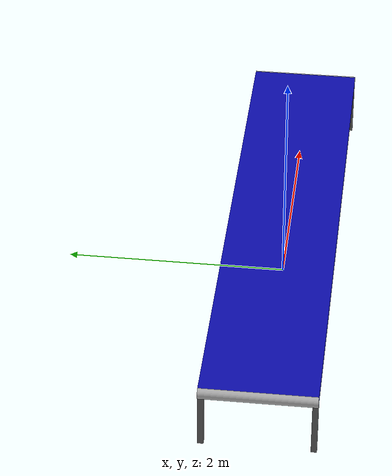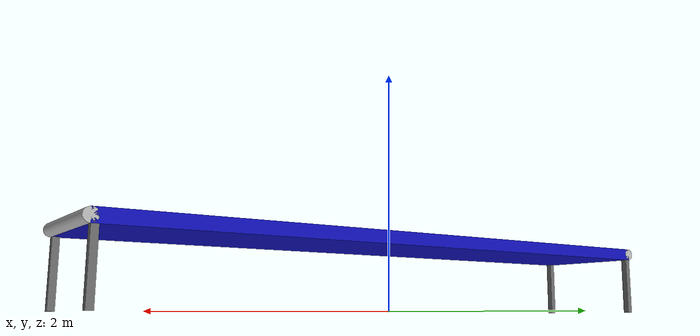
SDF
<?xml version="1.0" ?>
<?xml version="1.0" ?>
<sdf version="1.7">
  <model name="simple_conveyor">
    <static>1</static>
    <link name="base_link">
      <pose relative_to="__model__">0 0 0 0 0 0</pose>
      <inertial>
        <mass>1000.0</mass>
        <inertia>
          <ixx>84.16666666666666</ixx>
          <ixy>0</ixy>
          <ixz>0</ixz>
          <iyy>2084.1666666666665</iyy>
          <iyz>1.5e-05</iyz>
          <izz>2166.6666666666665</izz>
        </inertia>
      </inertial>
      <collision name="main_collision">
        <pose relative_to="base_link">0 0 0.55 0 0 0</pose>
        <geometry>
          <box>
            <size>5.0 1.0 0.1</size>
          </box>
        </geometry>
        <surface>
          <friction>
            <ode>
              <mu>0.7</mu>
              <mu2>150</mu2>
              <fdir1>0 1 0</fdir1>
            </ode>
          </friction>
        </surface>
      </collision>
      <visual name="main_visual">
        <pose relative_to="base_link">0 0 0.55 0 0 0</pose>
        <geometry>
          <box>
            <size>5.0 1.0 0.1</size>
          </box>
        </geometry>
        <material>
          <ambient>0.05 0.05 0.70 1</ambient>
          <diffuse>0.05 0.05 0.70 1</diffuse>
          <specular>0.8 0.8 0.8 1</specular>
        </material>
      </visual>
      <collision name="collision_1">
        <pose relative_to="base_link">2.5 0 0.55 -1.570796327 0 0</pose>
        <geometry>
          <cylinder>
            <length>1.0</length>
            <radius>0.05</radius>
          </cylinder>
        </geometry>
        <surface>
          <friction>
            <ode>
              <mu>0.7</mu>
              <mu2>150</mu2>
              <fdir1>0 1 0</fdir1>
            </ode>
          </friction>
        </surface>
      </collision>
      <visual name="visual_1">
        <pose relative_to="base_link">2.5 0 0.55 -1.570796327 0 0</pose>
        <geometry>
          <cylinder>
            <length>1.0</length>
            <radius>0.05</radius>
          </cylinder>
        </geometry>
        <material>
          <ambient>0.7 0.7 0.7 1</ambient>
          <diffuse>0.7 0.7 0.7 1</diffuse>
          <specular>1.0 1.0 1.0 1</specular>
        </material>
      </visual>
      <collision name="collision_2">
        <pose relative_to="base_link">-2.5 0 0.55 -1.570796327 0 0</pose>
        <geometry>
          <cylinder>
            <length>1.0</length>
            <radius>0.05</radius>
          </cylinder>
        </geometry>
        <surface>
          <friction>
            <ode>
              <mu>0.7</mu>
              <mu2>150</mu2>
              <fdir1>0 1 0</fdir1>
            </ode>
          </friction>
        </surface>
      </collision>
      <visual name="visual_2">
        <pose relative_to="base_link">-2.5 0 0.55 -1.570796327 0 0</pose>
        <geometry>
          <cylinder>
            <length>1.0</length>
            <radius>0.05</radius>
          </cylinder>
        </geometry>
        <material>
          <ambient>0.7 0.7 0.7 1</ambient>
          <diffuse>0.7 0.7 0.7 1</diffuse>
          <specular>1.0 1.0 1.0 1</specular>
        </material>
      </visual>
      <collision name="leg_collision_0">
        <pose relative_to="base_link">2.475 0.475 0.25 0 0 0</pose>
        <geometry>
          <box>
            <size>0.05 0.05 0.5</size>
          </box>
        </geometry>
      </collision>
      <visual name="leg_visual_0">
        <pose relative_to="base_link">2.475 0.475 0.25 0 0 0</pose>
        <geometry>
          <box>
            <size>0.05 0.05 0.5</size>
          </box>
        </geometry>
        <material>
          <ambient>0.4 0.4 0.4 1</ambient>
          <diffuse>0.4 0.4 0.4 1</diffuse>
          <specular>0.8 0.8 0.8 1</specular>
        </material>
      </visual>
      <collision name="leg_collision_1">
        <pose relative_to="base_link">2.475 -0.475 0.25 0 0 0</pose>
        <geometry>
          <box>
            <size>0.05 0.05 0.5</size>
          </box>
        </geometry>
      </collision>
      <visual name="leg_visual_1">
        <pose relative_to="base_link">2.475 -0.475 0.25 0 0 0</pose>
        <geometry>
          <box>
            <size>0.05 0.05 0.5</size>
          </box>
        </geometry>
        <material>
          <ambient>0.4 0.4 0.4 1</ambient>
          <diffuse>0.4 0.4 0.4 1</diffuse>
          <specular>0.8 0.8 0.8 1</specular>
        </material>
      </visual>
      <collision name="leg_collision_2">
        <pose relative_to="base_link">-2.475 0.475 0.25 0 0 0</pose>
        <geometry>
          <box>
            <size>0.05 0.05 0.5</size>
          </box>
        </geometry>
      </collision>
      <visual name="leg_visual_2">
        <pose relative_to="base_link">-2.475 0.475 0.25 0 0 0</pose>
        <geometry>
          <box>
            <size>0.05 0.05 0.5</size>
          </box>
        </geometry>
        <material>
          <ambient>0.4 0.4 0.4 1</ambient>
          <diffuse>0.4 0.4 0.4 1</diffuse>
          <specular>0.8 0.8 0.8 1</specular>
        </material>
      </visual>
      <collision name="leg_collision_3">
        <pose relative_to="base_link">-2.475 -0.475 0.25 0 0 0</pose>
        <geometry>
          <box>
            <size>0.05 0.05 0.5</size>
          </box>
        </geometry>
      </collision>
      <visual name="leg_visual_3">
        <pose relative_to="base_link">-2.475 -0.475 0.25 0 0 0</pose>
        <geometry>
          <box>
            <size>0.05 0.05 0.5</size>
          </box>
        </geometry>
        <material>
          <ambient>0.4 0.4 0.4 1</ambient>
          <diffuse>0.4 0.4 0.4 1</diffuse>
          <specular>0.8 0.8 0.8 1</specular>
        </material>
      </visual>
      <gravity>1</gravity>
      <kinematic>0</kinematic>
    </link>
    <plugin filename="gz-sim-track-controller-system" name="gz::sim::systems::TrackController">
      <link>base_link</link>
      <odometry_publish_frequency>1</odometry_publish_frequency>
    </plugin>
    <plugin filename="gz-sim-triggered-publisher-system" name="gz::sim::systems::TriggeredPublisher">
      <input type="gz.msgs.Int32" topic="/keyboard/keypress">
        <match field="data">87</match>
      </input>
      <output type="gz.msgs.Double" topic="/model/simple_conveyor/link/base_link/track_cmd_vel">
        data: 1.0
      </output>
    </plugin>
    <plugin filename="gz-sim-triggered-publisher-system" name="gz::sim::systems::TriggeredPublisher">
      <input type="gz.msgs.Int32" topic="/keyboard/keypress">
        <match field="data">88</match>
      </input>
      <output type="gz.msgs.Double" topic="/model/simple_conveyor/link/base_link/track_cmd_vel">
        data: -1.0
      </output>
    </plugin>
    <plugin filename="gz-sim-triggered-publisher-system" name="gz::sim::systems::TriggeredPublisher">
      <input type="gz.msgs.Int32" topic="/keyboard/keypress">
        <match field="data">83</match>
      </input>
      <output type="gz.msgs.Double" topic="/model/simple_conveyor/link/base_link/track_cmd_vel">
        data: 0.0
      </output>
    </plugin>
  </model>
</sdf>
